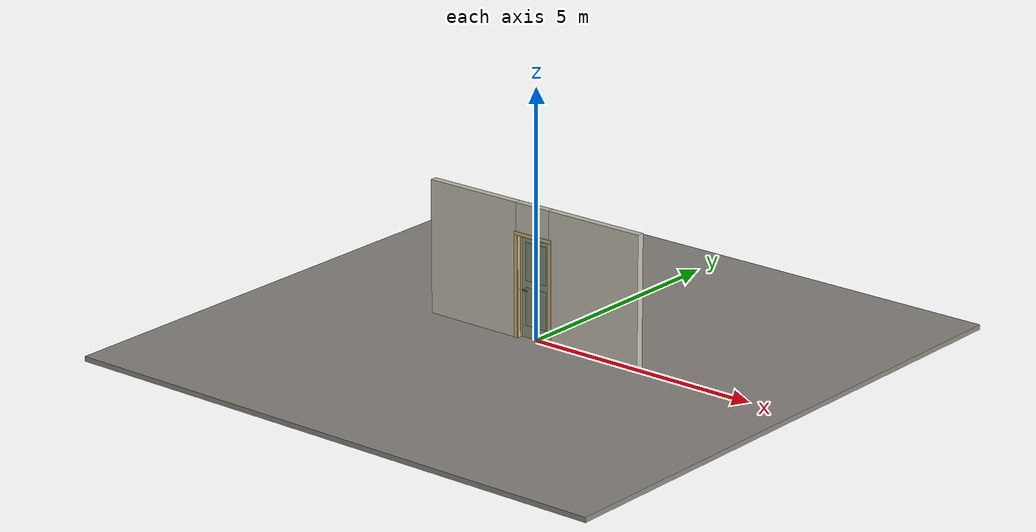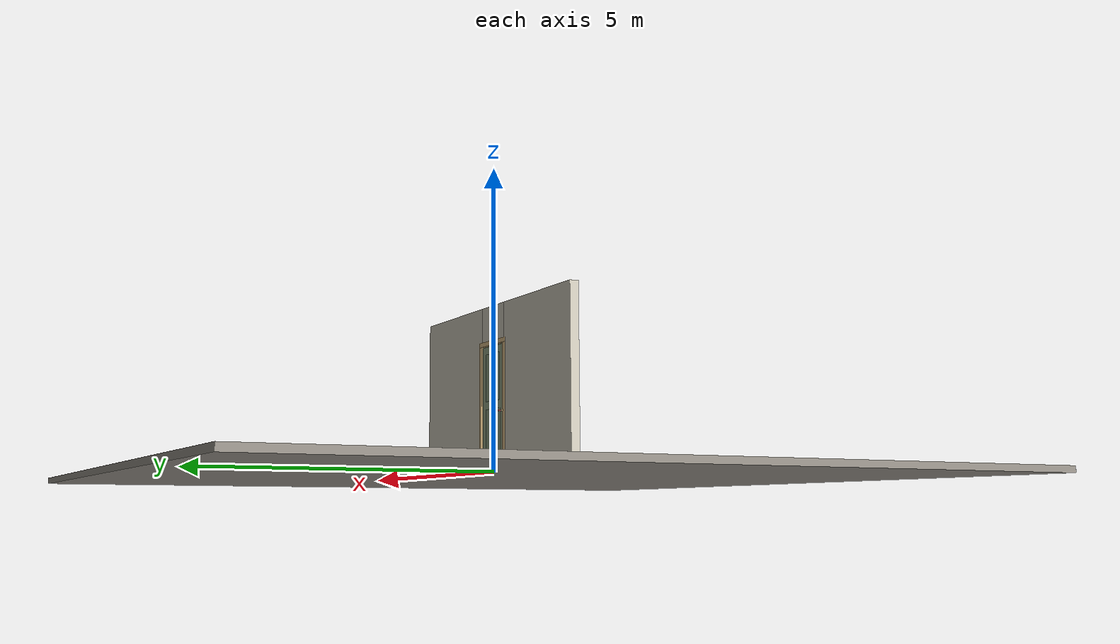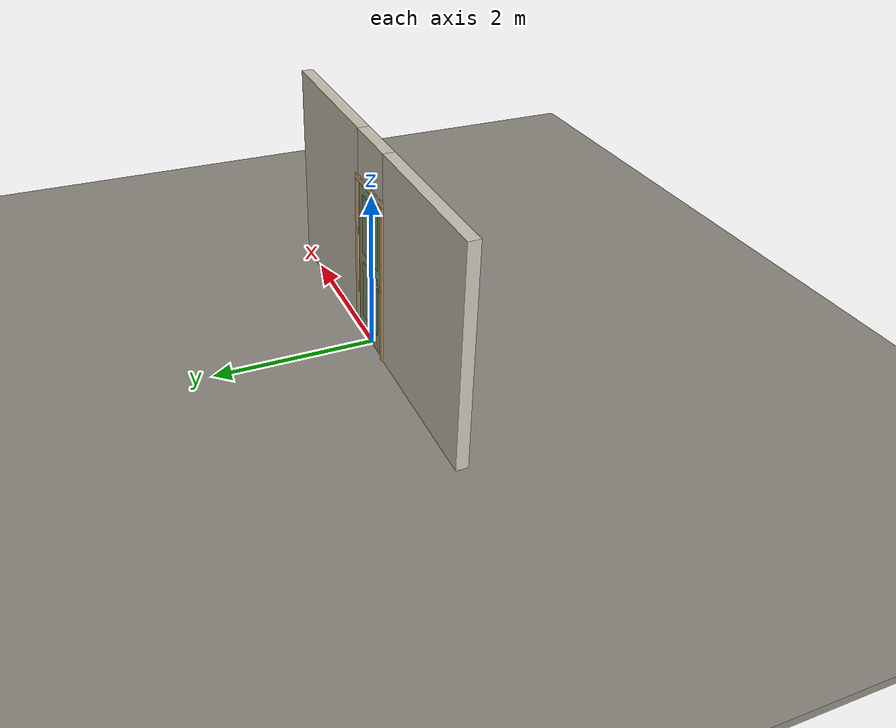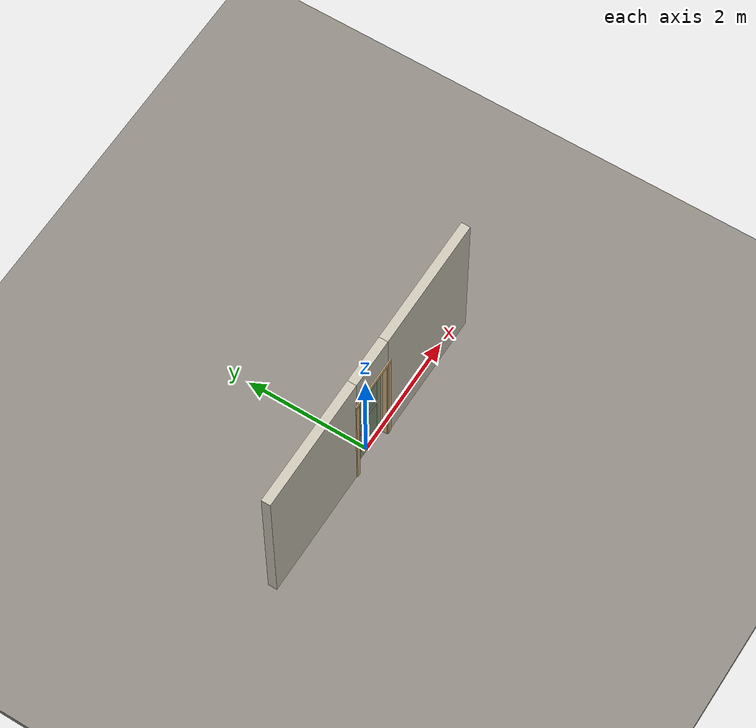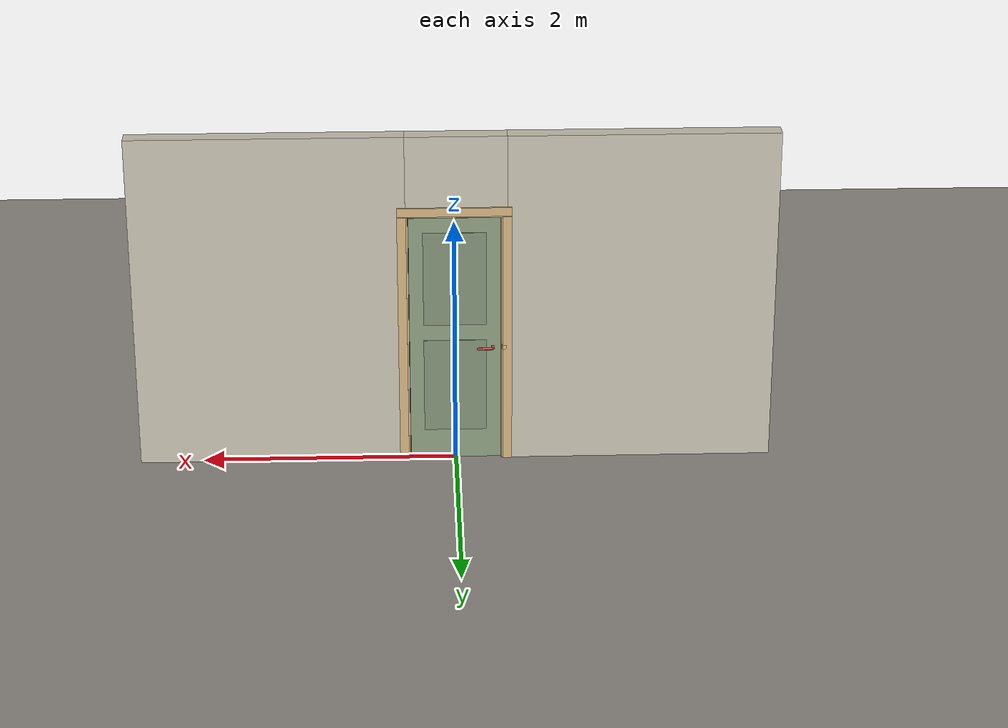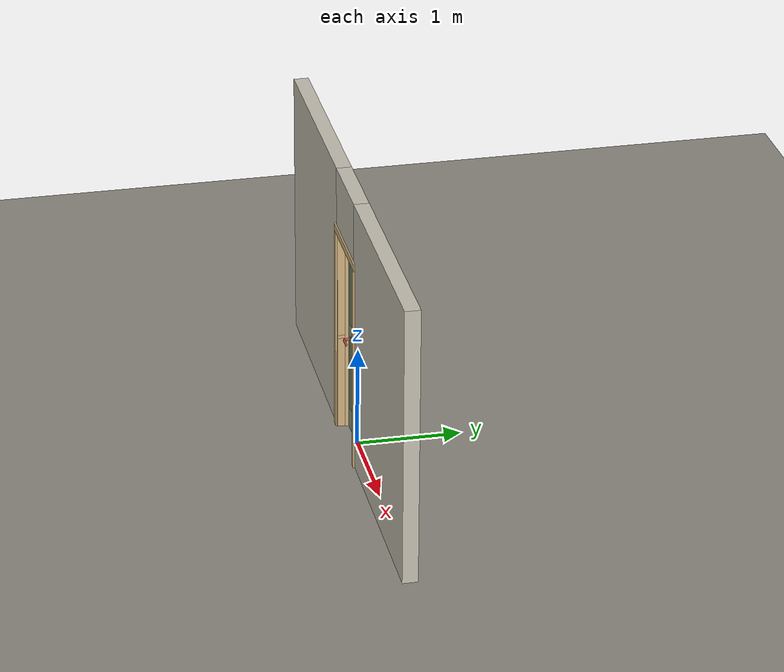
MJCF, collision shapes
<?xml version="1.0" ?>
<mujoco model="db0883_swing_single_full">
  <compiler angle="radian" meshdir="../../hardware" texturedir="../../textures" autolimits="true" inertiafromgeom="false"/>
  <option timestep="0.002" integrator="implicitfast" cone="elliptic" impratio="10" noslip_iterations="3">
    <flag multiccd="enable"/>
  </option>
  <size memory="16M"/>
  <default>
    <geom condim="4" solref="0.005 1" solimp="0.95 0.99 0.001"/>
    <joint solreflimit="0.005 1" solimplimit="0.95 0.99 0.001"/>
    <tendon solreflimit="0.005 1"/>
    <equality solref="0.002 1"/>
  </default>
  <visual>
    <headlight ambient="0.4 0.4 0.4" diffuse="0.7 0.7 0.7" specular="0.2 0.2 0.2"/>
    <quality shadowsize="4096"/>
    <map znear="0.01" zfar="60"/>
  </visual>
  <asset>
    <mesh name="hinge_96510cf394" file="hinge_96510cf394.obj"/>
    <mesh name="hinge_jamb_7fd4ca52b2" file="hinge_jamb_7fd4ca52b2.obj"/>
    <mesh name="lever_9f02b544cf" file="lever_9f02b544cf.obj"/>
    <material name="mat_floor" rgba="0.55 0.53 0.5 1" specular="0.2" shininess="0.15" reflectance="0"/>
    <material name="mat_wall" rgba="0.78 0.76 0.7 1" specular="0.2" shininess="0.1" reflectance="0"/>
    <material name="mat_leaf" rgba="0.55 0.62 0.5 1" specular="0.2" shininess="0.58" reflectance="0"/>
    <material name="mat_leaf_panel" rgba="0.506 0.57 0.46 1" specular="0.2" shininess="0.58" reflectance="0"/>
    <material name="mat_hinge" rgba="0.65 0.66 0.68 1" specular="0.74" shininess="0.5" reflectance="0.36"/>
    <material name="mat_op_nickel_satin" rgba="0.72 0.7 0.66 1" specular="0.8" shininess="0.65" reflectance="0.4"/>
    <material name="mat_trim" rgba="0.85 0.66 0.3 1" specular="0.8" shininess="0.75" reflectance="0.4"/>
    <material name="mat_bolt" rgba="0.85 0.66 0.3 1" specular="0.8" shininess="0.75" reflectance="0.4"/>
    <material name="mat_frame" rgba="0.82 0.7 0.5 1" specular="0.2" shininess="0.45" reflectance="0"/>
    <material name="mat_seal" rgba="0.1 0.1 0.1 1" specular="0.2" shininess="0.1" reflectance="0"/>
    <texture name="skybox" type="skybox" builtin="gradient" rgb1="0.6 0.7 0.85" rgb2="0.9 0.92 0.95" width="256" height="256"/>
  </asset>
  <worldbody>
    <light name="sun" pos="1.5 -2.5 4" dir="-0.3 0.5 -0.8" directional="true" diffuse="0.8 0.8 0.8" specular="0.3 0.3 0.3" castshadow="true"/>
    <light name="fill" pos="-1.5 2.5 3" dir="0.3 -0.5 -0.7" directional="true" diffuse="0.35 0.35 0.4" castshadow="false"/>
    <camera name="robot_view" pos="0 -2.590187 1.734312" xyaxes="1 0 0 0 0.26963 0.962964" fovy="52"/>
    <camera name="far_view" pos="0 2.494187 1.734312" xyaxes="-1 0 0 0 -0.26963 0.962964" fovy="52"/>
    <camera name="iso" pos="-1.932062 -2.183438 2.141063" xyaxes="0.741536 -0.670913 0 0.242917 0.268487 0.932151" fovy="46"/>
    <camera name="detail_handle" pos="-0.015 -0.8725 1.245" xyaxes="0.97561 0.219512 0 -0.070934 0.315262 0.94635" fovy="38"/>
    <geom name="floor" type="box" size="6 6 0.05" pos="0 0 -0.05" material="mat_floor" group="0" contype="1" conaffinity="1" friction="0.8 0.005 0.0001" density="2400"/>
    <geom name="wall_left" type="box" size="1.046 0.0725 1.35" pos="-1.454 -0.048 1.35" material="mat_wall" group="0" contype="1" conaffinity="1" friction="0.6 0.005 0.0001" density="800"/>
    <geom name="wall_right" type="box" size="1.061 0.0725 1.35" pos="1.439 -0.048 1.35" material="mat_wall" group="0" contype="1" conaffinity="1" friction="0.6 0.005 0.0001" density="800"/>
    <geom name="wall_header" type="box" size="0.393 0.0725 0.303" pos="-0.015 -0.048 2.397" material="mat_wall" group="0" contype="1" conaffinity="1" friction="0.6 0.005 0.0001" density="800"/>
    <geom name="hinge_0_jamb" type="mesh" mesh="hinge_jamb_7fd4ca52b2" pos="0.356 0.0245 0.259" quat="0 0 0 1" material="mat_hinge" group="1" contype="0" conaffinity="0" density="7850"/>
    <geom name="hinge_1_jamb" type="mesh" mesh="hinge_jamb_7fd4ca52b2" pos="0.356 0.0245 1.025" quat="0 0 0 1" material="mat_hinge" group="1" contype="0" conaffinity="0" density="7850"/>
    <geom name="hinge_2_jamb" type="mesh" mesh="hinge_jamb_7fd4ca52b2" pos="0.356 0.0245 1.861" quat="0 0 0 1" material="mat_hinge" group="1" contype="0" conaffinity="0" density="7850"/>
    <geom name="jamb_hinge" type="box" size="0.0095 0.0725 1.0225" pos="0.3685 -0.048 1.0225" material="mat_frame" group="0" contype="1" conaffinity="1" friction="0.6 0.005 0.0001" density="400"/>
    <geom name="strike_965_wall_n" type="box" size="0.0245 0.056325 0.0167" pos="-0.3835 -0.064175 0.965" material="mat_frame" group="0" contype="1" conaffinity="1" friction="0.6 0.005 0.0001" density="400"/>
    <geom name="strike_965_wall_p" type="box" size="0.0245 0.008 0.0167" pos="-0.3835 0.01585 0.965" material="mat_frame" group="0" contype="1" conaffinity="1" friction="0.6 0.005 0.0001" density="400"/>
    <geom name="strike_965_ramp" type="box" size="0.0245 0.01649 0.0167" pos="-0.388136 0.028673 0.965" quat="0.977148 0 0 0.212558" material="mat_frame" group="0" contype="1" conaffinity="1" friction="0.12 0.005 0.0001" density="400"/>
    <geom name="strike_965_back" type="box" size="0.01615 0.00785 0.0167" pos="-0.39185 0 0.965" material="mat_frame" group="0" contype="1" conaffinity="1" friction="0.6 0.005 0.0001" density="400"/>
    <geom name="jamb_strike_0" type="box" size="0.0245 0.0725 0.47415" pos="-0.3835 -0.048 0.47415" material="mat_frame" group="0" contype="1" conaffinity="1" friction="0.6 0.005 0.0001" density="400"/>
    <geom name="jamb_strike_1" type="box" size="0.0245 0.0725 0.53165" pos="-0.3835 -0.048 1.51335" material="mat_frame" group="0" contype="1" conaffinity="1" friction="0.6 0.005 0.0001" density="400"/>
    <geom name="jamb_head" type="box" size="0.393 0.0725 0.0095" pos="-0.015 -0.048 2.0545" material="mat_frame" group="0" contype="1" conaffinity="1" friction="0.6 0.005 0.0001" density="400"/>
    <geom name="head_stud" type="box" size="0.393 0.0725 0.015" pos="-0.015 -0.048 2.079" material="mat_wall" group="0" contype="1" conaffinity="1" friction="0.6 0.005 0.0001" density="500"/>
    <geom name="stop_hinge" type="box" size="0.0055 0.016 1.0225" pos="0.3535 -0.034 1.0225" material="mat_frame" group="0" contype="1" conaffinity="1" friction="0.6 0.005 0.0001" density="400"/>
    <geom name="stop_strike" type="box" size="0.0055 0.016 1.0225" pos="-0.3535 -0.034 1.0225" material="mat_frame" group="0" contype="1" conaffinity="1" friction="0.6 0.005 0.0001" density="400"/>
    <geom name="stop_head" type="box" size="0.359 0.016 0.0055" pos="0 -0.034 2.0395" material="mat_frame" group="0" contype="1" conaffinity="1" friction="0.6 0.005 0.0001" density="400"/>
    <geom name="seal_hinge" type="box" size="0.004 0.002 1.0225" pos="0.356 -0.0195 1.0225" material="mat_seal" group="1" contype="0" conaffinity="0" density="1100"/>
    <geom name="seal_strike" type="box" size="0.004 0.002 1.0225" pos="-0.356 -0.0195 1.0225" material="mat_seal" group="1" contype="0" conaffinity="0" density="1100"/>
    <geom name="seal_head" type="box" size="0.339 0.002 0.008" pos="0 -0.0195 2.033" material="mat_seal" group="1" contype="0" conaffinity="0" density="1100"/>
    <geom name="casing_l_n" type="box" size="0.035 0.008 1.032" pos="-0.408 -0.1285 1.0225" material="mat_frame" group="2" contype="0" conaffinity="0" density="400"/>
    <geom name="casing_r_n" type="box" size="0.035 0.008 1.032" pos="0.408 -0.1285 1.0225" material="mat_frame" group="2" contype="0" conaffinity="0" density="400"/>
    <geom name="casing_h_n" type="box" size="0.443 0.008 0.035" pos="0 -0.1285 2.094" material="mat_frame" group="2" contype="0" conaffinity="0" density="400"/>
    <geom name="casing_l_p" type="box" size="0.035 0.008 1.032" pos="-0.408 0.0325 1.0225" material="mat_frame" group="2" contype="0" conaffinity="0" density="400"/>
    <geom name="casing_r_p" type="box" size="0.035 0.008 1.032" pos="0.408 0.0325 1.0225" material="mat_frame" group="2" contype="0" conaffinity="0" density="400"/>
    <geom name="casing_h_p" type="box" size="0.443 0.008 0.035" pos="0 0.0325 2.094" material="mat_frame" group="2" contype="0" conaffinity="0" density="400"/>
    <site name="approach_point" pos="0 -1.5 0" quat="1 0 0 0" size="0.05" rgba="0.2 0.9 0.2 0.5" group="4"/>
    <site name="goal_point" pos="0 1.5 0" quat="1 0 0 0" size="0.05" rgba="0.2 0.9 0.2 0.5" group="4"/>
    <site name="door_plane_center" pos="0 0 1.0225" quat="1 0 0 0" size="0.02" rgba="0.2 0.9 0.2 0.5" group="4"/>
    <body name="leaf" pos="0.359 0 0">
      <inertial pos="-0.345456 0.000555 1.02586" mass="11.225314" quat="0.499227 0.501317 -0.498663 0.500787" diaginertia="0.509204812 3.89429569 4.400993103"/>
      <joint name="leaf_hinge" type="hinge" axis="0 0 -1" pos="-0.003 0.0245 0" limited="true" range="0 2.094395" solreflimit="0.02 1" damping="2.093782" frictionloss="0.78028" stiffness="6.6" springref="-0.409091" armature="0.02"/>
      <geom name="leaf_slab" type="box" size="0.3555 0.0175 1.016" pos="-0.3585 0 1.025" material="mat_leaf" group="0" contype="1" conaffinity="1" friction="0.35 0.005 0.0001" density="1"/>
      <geom name="leaf_panel_0_n" type="box" size="0.2455 0.003 0.38422" pos="-0.3585 -0.0205 0.63674" material="mat_leaf_panel" group="1" contype="0" conaffinity="0" density="1"/>
      <geom name="leaf_panel_0_p" type="box" size="0.2455 0.003 0.38422" pos="-0.3585 0.0205 0.63674" material="mat_leaf_panel" group="1" contype="0" conaffinity="0" density="1"/>
      <geom name="leaf_panel_1_n" type="box" size="0.2455 0.003 0.38422" pos="-0.3585 -0.0205 1.53518" material="mat_leaf_panel" group="1" contype="0" conaffinity="0" density="1"/>
      <geom name="leaf_panel_1_p" type="box" size="0.2455 0.003 0.38422" pos="-0.3585 0.0205 1.53518" material="mat_leaf_panel" group="1" contype="0" conaffinity="0" density="1"/>
      <geom name="hinge_0" type="mesh" mesh="hinge_96510cf394" pos="-0.003 0.0245 0.259" quat="0 0 0 1" material="mat_hinge" group="1" contype="0" conaffinity="0" density="7850"/>
      <geom name="hinge_1" type="mesh" mesh="hinge_96510cf394" pos="-0.003 0.0245 1.025" quat="0 0 0 1" material="mat_hinge" group="1" contype="0" conaffinity="0" density="7850"/>
      <geom name="hinge_2" type="mesh" mesh="hinge_96510cf394" pos="-0.003 0.0245 1.861" quat="0 0 0 1" material="mat_hinge" group="1" contype="0" conaffinity="0" density="7850"/>
      <geom name="leaf_latch_bolt_faceplate" type="box" size="0.0006 0.01235 0.0267" pos="-0.7134 0 0.965" material="mat_bolt" group="1" contype="0" conaffinity="0" density="8500"/>
      <site name="leaf_edge_mid" pos="-0.714 0 1.016" quat="1 0 0 0" size="0.02" rgba="0.2 0.9 0.2 0.5" group="4"/>
      <body name="leaf_handle" pos="-0.654 0 0.965">
        <inertial pos="0.028543 0.000681 0" mass="0.978226" quat="0.71182 0 0 -0.702362" diaginertia="0.001771826 0.00319423 0.004787852"/>
        <joint name="leaf_handle_hinge" type="hinge" axis="0 1 0" limited="true" range="0 0.09" damping="0.245624" frictionloss="0.048" stiffness="1.2" springref="-0.458333" armature="0.01"/>
        <geom name="leaf_handle_spindle" type="cylinder" size="0.006 0.0255" pos="0 0 0" quat="0.707107 -0.707107 0 0" material="mat_op_nickel_satin" group="1" contype="0" conaffinity="0" density="7850"/>
        <geom name="leaf_handle_lever_n" type="mesh" mesh="lever_9f02b544cf" pos="0 -0.0175 0" quat="0 0 -0.707107 0.707107" material="mat_op_nickel_satin" group="1" contype="0" conaffinity="0" density="3000"/>
        <geom name="leaf_handle_lever_col_n" type="capsule" size="0.0095 0.053" pos="0.0625 -0.0725 0" quat="0.707107 0 0.707107 0" material="mat_op_nickel_satin" group="3" contype="1" conaffinity="1" rgba="0.8 0.3 0.3 0.25" friction="0.7 0.01 0.0001" density="3000"/>
        <geom name="leaf_handle_hub_col_n" type="cylinder" size="0.012 0.022" pos="0 -0.0475 0" quat="0.707107 -0.707107 0 0" material="mat_op_nickel_satin" group="3" contype="1" conaffinity="1" rgba="0.8 0.3 0.3 0.25" friction="0.6 0.005 0.0001" density="3000"/>
        <geom name="leaf_handle_lever_p" type="mesh" mesh="lever_9f02b544cf" pos="0 0.0175 0" quat="0 0 0.707107 0.707107" material="mat_op_nickel_satin" group="1" contype="0" conaffinity="0" density="3000"/>
        <geom name="leaf_handle_lever_col_p" type="capsule" size="0.0095 0.053" pos="0.0625 0.0725 0" quat="0.707107 0 0.707107 0" material="mat_op_nickel_satin" group="3" contype="1" conaffinity="1" rgba="0.8 0.3 0.3 0.25" friction="0.7 0.01 0.0001" density="3000"/>
        <geom name="leaf_handle_hub_col_p" type="cylinder" size="0.012 0.022" pos="0 0.0475 0" quat="0.707107 -0.707107 0 0" material="mat_op_nickel_satin" group="3" contype="1" conaffinity="1" rgba="0.8 0.3 0.3 0.25" friction="0.6 0.005 0.0001" density="3000"/>
        <geom name="leaf_handle_turn_button_p" type="cylinder" size="0.006 0.005" pos="0 0.083 0" quat="0.707107 -0.707107 0 0" material="mat_trim" group="1" contype="0" conaffinity="0" density="7100"/>
        <site name="leaf_handle_grip_n" pos="0.1 -0.0725 0" quat="1 0 0 0" size="0.012" rgba="0.2 0.9 0.2 0.5" group="4"/>
        <site name="leaf_handle_grip_p" pos="0.1 0.0725 0" quat="1 0 0 0" size="0.012" rgba="0.2 0.9 0.2 0.5" group="4"/>
      </body>
      <body name="leaf_latch_bolt" pos="-0.714 0 0.965">
        <inertial pos="0.00865 0 0" mass="0.041419" quat="0.92388 0.382683 0 0" diaginertia="0.000000798 0.000005598 0.000005598"/>
        <joint name="leaf_latch_bolt_slide" type="slide" axis="1 0 0" limited="true" range="0 0.0127" damping="2" frictionloss="0.3" stiffness="300" springref="-0.008333" armature="0.1"/>
        <geom name="leaf_latch_bolt_capsule" type="capsule" size="0.00635 0.015" pos="0.00865 0 0" quat="0.707107 0 -0.707107 0" material="mat_bolt" group="0" contype="1" conaffinity="1" friction="0.2 0.005 0.0001" density="8500"/>
      </body>
    </body>
  </worldbody>
  <tendon>
    <fixed name="leaf_latch_bolt_coupling" limited="true" range="0 10">
      <joint joint="leaf_latch_bolt_slide" coef="1"/>
      <joint joint="leaf_handle_hinge" coef="-0.013956"/>
    </fixed>
  </tendon>
  <sensor>
    <jointpos name="leaf_hinge_pos" joint="leaf_hinge"/>
    <jointvel name="leaf_hinge_vel" joint="leaf_hinge"/>
    <jointpos name="leaf_handle_hinge_pos" joint="leaf_handle_hinge"/>
    <jointvel name="leaf_handle_hinge_vel" joint="leaf_handle_hinge"/>
    <jointpos name="leaf_latch_bolt_slide_pos" joint="leaf_latch_bolt_slide"/>
    <jointvel name="leaf_latch_bolt_slide_vel" joint="leaf_latch_bolt_slide"/>
  </sensor>
</mujoco>
